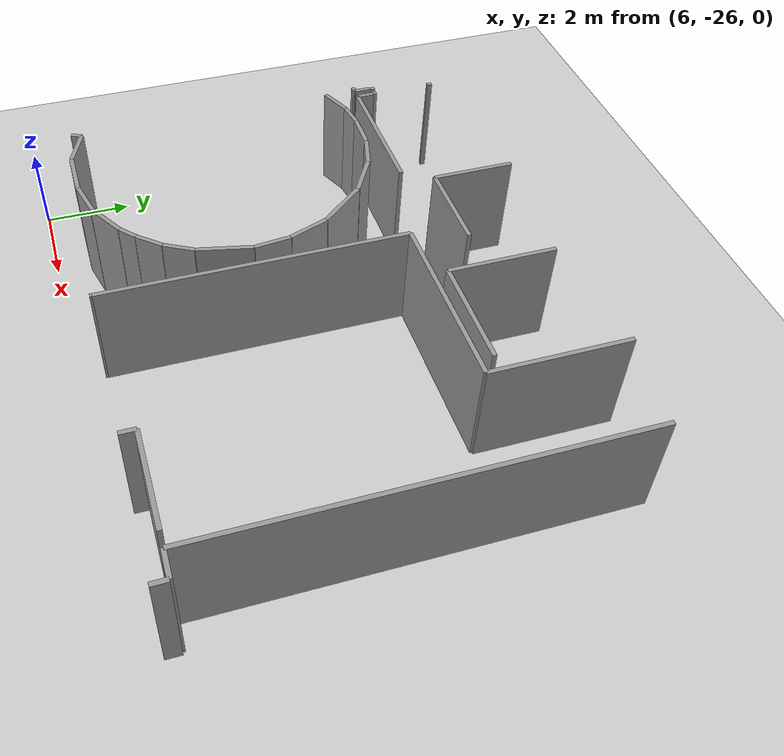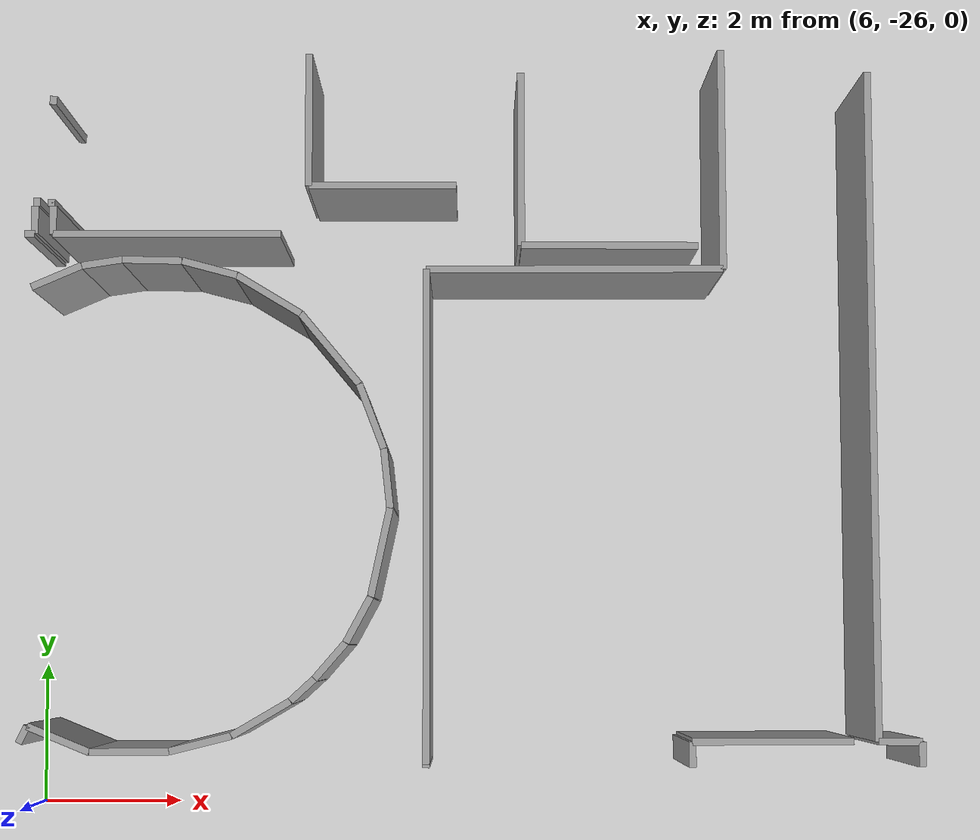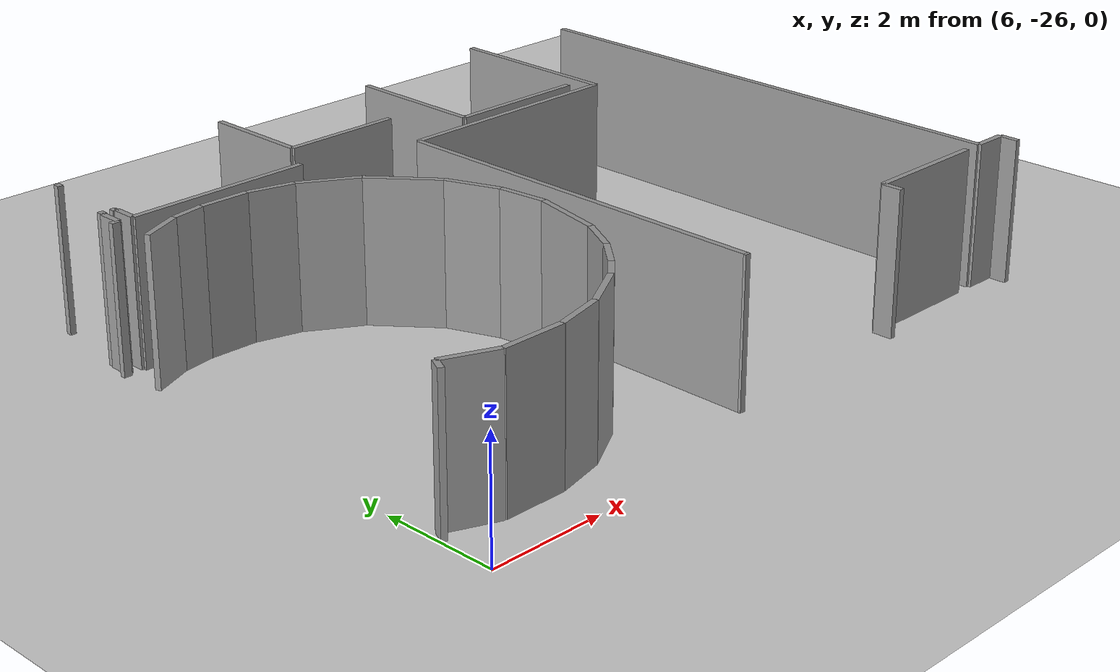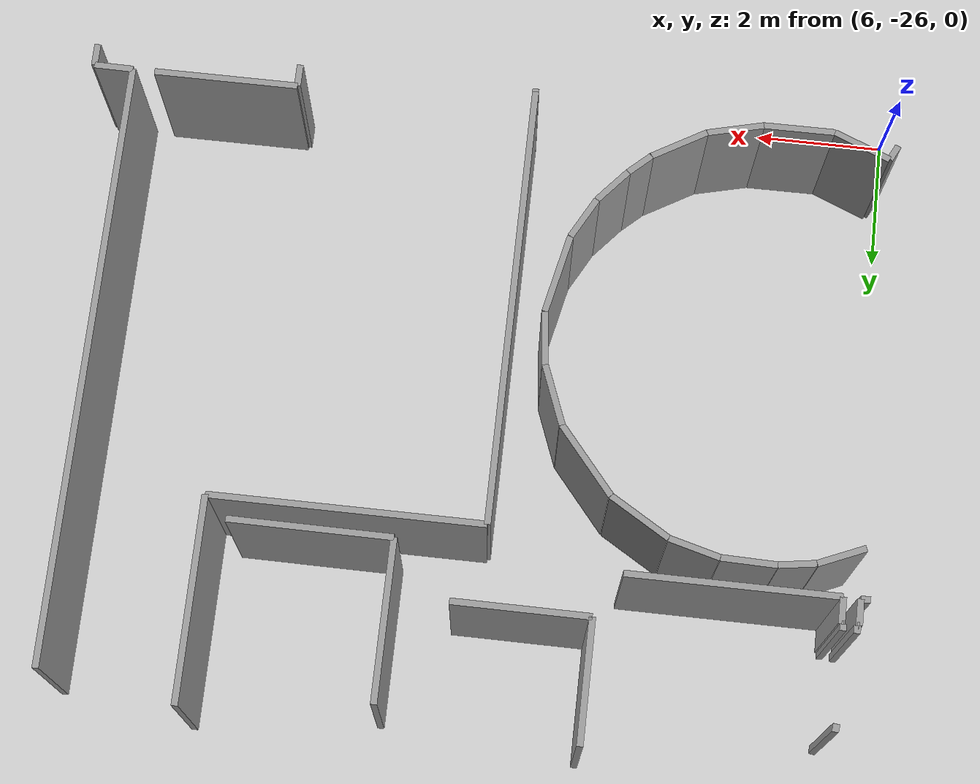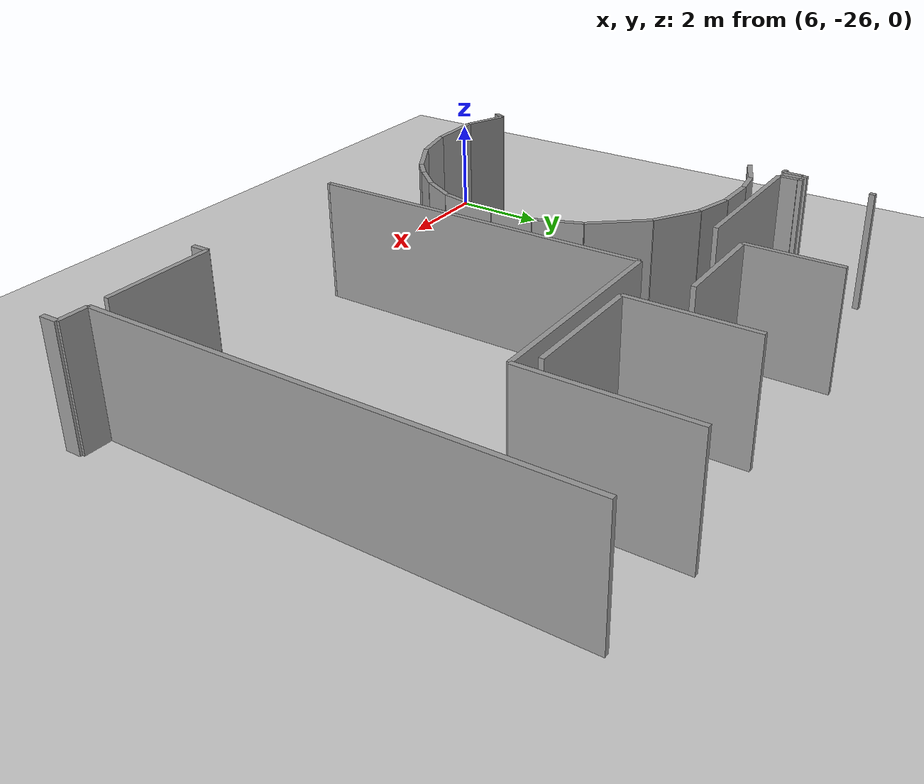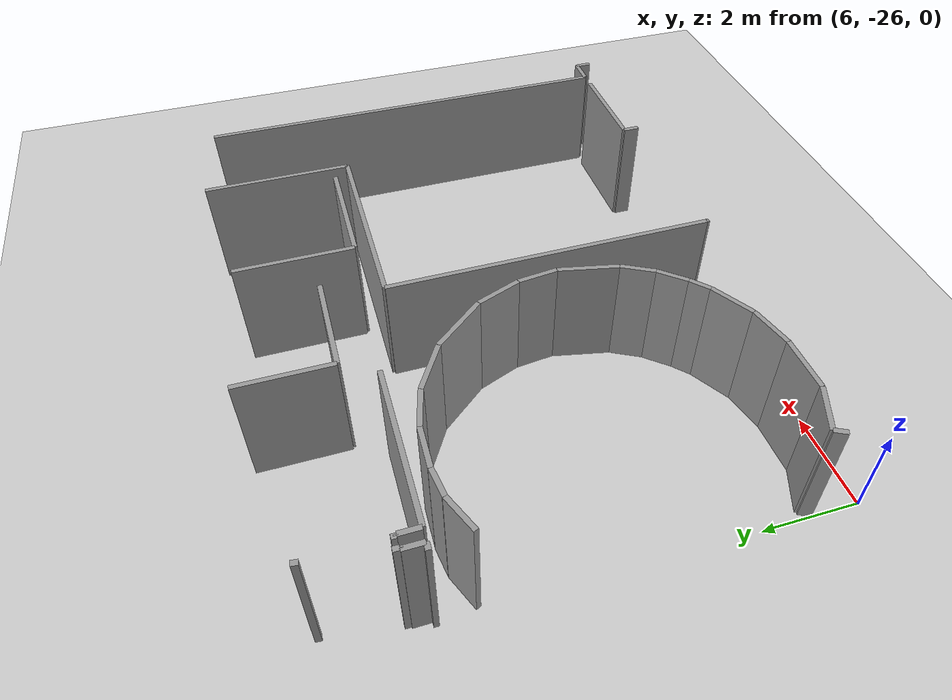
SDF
<sdf version="1.6">
 <world name="default">
  <model name="ground_plane">
   <static>1</static>
   <link name="link">
    <collision name="collision">
     <geometry><plane><normal>0 0 1</normal><size>100 100</size></plane></geometry>
     <surface><friction><ode><mu>100</mu><mu2>50</mu2></ode></friction></surface>
    </collision>
    <visual name="visual">
     <cast_shadows>0</cast_shadows>
     <geometry><plane><normal>0 0 1</normal><size>100 100</size></plane></geometry>
     <material>
      <script><uri>file://media/materials/scripts/gazebo.material</uri><name>Gazebo/Grey</name></script>
     </material>
    </visual>
   </link>
  </model>
  <model name="50045368">
   <static>1</static>
   <link name="Wall_472">
    <collision name="Wall_472_Collision">
     <geometry><box><size>0.116391359593 0.1 2.5</size></box></geometry>
     <pose>0.0581956797967 0 1.25 0 0 0</pose>
    </collision>
    <visual name="Wall_472_Visual">
     <pose>0.0581956797967 0 1.25 0 0 0</pose>
     <geometry><box><size>0.116391359593 0.1 2.5</size></box></geometry>
     <material>
      <script><uri>file://media/materials/scripts/gazebo.material</uri><name>Gazebo/Grey</name></script>
      <ambient>1 1 1 1</ambient>
     </material>
    </visual>
    <pose>58.9964421855 -43.0712833545 0 0 0 -1.57079632679</pose>
   </link>
   <link name="Wall_473">
    <collision name="Wall_473_Collision">
     <geometry><box><size>0.0249047013977 0.1 2.5</size></box></geometry>
     <pose>0.0124523506989 0 1.25 0 0 0</pose>
    </collision>
    <visual name="Wall_473_Visual">
     <pose>0.0124523506989 0 1.25 0 0 0</pose>
     <geometry><box><size>0.0249047013977 0.1 2.5</size></box></geometry>
     <material>
      <script><uri>file://media/materials/scripts/gazebo.material</uri><name>Gazebo/Grey</name></script>
      <ambient>1 1 1 1</ambient>
     </material>
    </visual>
    <pose>58.9964421855 -43.1876747141 0 0 0 3.14159265359</pose>
   </link>
   <link name="Wall_474">
    <collision name="Wall_474_Collision">
     <geometry><box><size>0.394536213469 0.1 2.5</size></box></geometry>
     <pose>0.197268106734 0 1.25 0 0 0</pose>
    </collision>
    <visual name="Wall_474_Visual">
     <pose>0.197268106734 0 1.25 0 0 0</pose>
     <geometry><box><size>0.394536213469 0.1 2.5</size></box></geometry>
     <material>
      <script><uri>file://media/materials/scripts/gazebo.material</uri><name>Gazebo/Grey</name></script>
      <ambient>1 1 1 1</ambient>
     </material>
    </visual>
    <pose>58.9715374841 -43.1876747141 0 0 0 -1.57079632679</pose>
   </link>
   <link name="Wall_475">
    <collision name="Wall_475_Collision">
     <geometry><box><size>0.141296060991 0.1 2.5</size></box></geometry>
     <pose>0.0706480304956 0 1.25 0 0 0</pose>
    </collision>
    <visual name="Wall_475_Visual">
     <pose>0.0706480304956 0 1.25 0 0 0</pose>
     <geometry><box><size>0.141296060991 0.1 2.5</size></box></geometry>
     <material>
      <script><uri>file://media/materials/scripts/gazebo.material</uri><name>Gazebo/Grey</name></script>
      <ambient>1 1 1 1</ambient>
     </material>
    </visual>
    <pose>58.9715374841 -43.5822109276 0 0 0 3.14159265359</pose>
   </link>
   <link name="Wall_478">
    <collision name="Wall_478_Collision">
     <geometry><box><size>0.763913130959 0.1 2.5</size></box></geometry>
     <pose>0.38195656548 0 1.25 0 0 0</pose>
    </collision>
    <visual name="Wall_478_Visual">
     <pose>0.38195656548 0 1.25 0 0 0</pose>
     <geometry><box><size>0.763913130959 0.1 2.5</size></box></geometry>
     <material>
      <script><uri>file://media/materials/scripts/gazebo.material</uri><name>Gazebo/Grey</name></script>
      <ambient>1 1 1 1</ambient>
     </material>
    </visual>
    <pose>58.9351969504 -44.3390088945 0 0 0 0.40484810481</pose>
   </link>
   <link name="Wall_479">
    <collision name="Wall_479_Collision">
     <geometry><box><size>0.574959528741 0.1 2.5</size></box></geometry>
     <pose>0.287479764371 0 1.25 0 0 0</pose>
    </collision>
    <visual name="Wall_479_Visual">
     <pose>0.287479764371 0 1.25 0 0 0</pose>
     <geometry><box><size>0.574959528741 0.1 2.5</size></box></geometry>
     <material>
      <script><uri>file://media/materials/scripts/gazebo.material</uri><name>Gazebo/Grey</name></script>
      <ambient>1 1 1 1</ambient>
     </material>
    </visual>
    <pose>59.6373570521 -44.0381194409 0 0 0 0.150179409364</pose>
   </link>
   <link name="Wall_480">
    <collision name="Wall_480_Collision">
     <geometry><box><size>0.840879662866 0.1 2.5</size></box></geometry>
     <pose>0.420439831433 0 1.25 0 0 0</pose>
    </collision>
    <visual name="Wall_480_Visual">
     <pose>0.420439831433 0 1.25 0 0 0</pose>
     <geometry><box><size>0.840879662866 0.1 2.5</size></box></geometry>
     <material>
      <script><uri>file://media/materials/scripts/gazebo.material</uri><name>Gazebo/Grey</name></script>
      <ambient>1 1 1 1</ambient>
     </material>
    </visual>
    <pose>60.2058449809 -43.9520965693 0 0 0 -0.02281949653</pose>
   </link>
   <link name="Wall_481">
    <collision name="Wall_481_Collision">
     <geometry><box><size>0.799048880495 0.1 2.5</size></box></geometry>
     <pose>0.399524440247 0 1.25 0 0 0</pose>
    </collision>
    <visual name="Wall_481_Visual">
     <pose>0.399524440247 0 1.25 0 0 0</pose>
     <geometry><box><size>0.799048880495 0.1 2.5</size></box></geometry>
     <material>
      <script><uri>file://media/materials/scripts/gazebo.material</uri><name>Gazebo/Grey</name></script>
      <ambient>1 1 1 1</ambient>
     </material>
    </visual>
    <pose>61.0465057179 -43.9712833545 0 0 0 -0.260715068957</pose>
   </link>
   <link name="Wall_482">
    <collision name="Wall_482_Collision">
     <geometry><box><size>1.05150777065 0.1 2.5</size></box></geometry>
     <pose>0.525753885327 0 1.25 0 0 0</pose>
    </collision>
    <visual name="Wall_482_Visual">
     <pose>0.525753885327 0 1.25 0 0 0</pose>
     <geometry><box><size>1.05150777065 0.1 2.5</size></box></geometry>
     <material>
      <script><uri>file://media/materials/scripts/gazebo.material</uri><name>Gazebo/Grey</name></script>
      <ambient>1 1 1 1</ambient>
     </material>
    </visual>
    <pose>61.8185514612 -44.1772554003 0 0 0 -0.543714620254</pose>
   </link>
   <link name="Wall_483">
    <collision name="Wall_483_Collision">
     <geometry><box><size>1.28922830204 0.1 2.5</size></box></geometry>
     <pose>0.644614151021 0 1.25 0 0 0</pose>
    </collision>
    <visual name="Wall_483_Visual">
     <pose>0.644614151021 0 1.25 0 0 0</pose>
     <geometry><box><size>1.28922830204 0.1 2.5</size></box></geometry>
     <material>
      <script><uri>file://media/materials/scripts/gazebo.material</uri><name>Gazebo/Grey</name></script>
      <ambient>1 1 1 1</ambient>
     </material>
    </visual>
    <pose>62.7184243964 -44.7212198221 0 0 0 -0.87983118902</pose>
   </link>
   <link name="Wall_484">
    <collision name="Wall_484_Collision">
     <geometry><box><size>0.966219719991 0.1 2.5</size></box></geometry>
     <pose>0.483109859995 0 1.25 0 0 0</pose>
    </collision>
    <visual name="Wall_484_Visual">
     <pose>0.483109859995 0 1.25 0 0 0</pose>
     <geometry><box><size>0.966219719991 0.1 2.5</size></box></geometry>
     <material>
      <script><uri>file://media/materials/scripts/gazebo.material</uri><name>Gazebo/Grey</name></script>
      <ambient>1 1 1 1</ambient>
     </material>
    </visual>
    <pose>63.540025413 -45.7147395172 0 0 0 -1.20682322228</pose>
   </link>
   <link name="Wall_485">
    <collision name="Wall_485_Collision">
     <geometry><box><size>0.836481408914 0.1 2.5</size></box></geometry>
     <pose>0.418240704457 0 1.25 0 0 0</pose>
    </collision>
    <visual name="Wall_485_Visual">
     <pose>0.418240704457 0 1.25 0 0 0</pose>
     <geometry><box><size>0.836481408914 0.1 2.5</size></box></geometry>
     <material>
      <script><uri>file://media/materials/scripts/gazebo.material</uri><name>Gazebo/Grey</name></script>
      <ambient>1 1 1 1</ambient>
     </material>
    </visual>
    <pose>63.8839898348 -46.6176620076 0 0 0 -1.4645677152</pose>
   </link>
   <link name="Wall_486">
    <collision name="Wall_486_Collision">
     <geometry><box><size>1.25883655094 0.1 2.5</size></box></geometry>
     <pose>0.62941827547 0 1.25 0 0 0</pose>
    </collision>
    <visual name="Wall_486_Visual">
     <pose>0.62941827547 0 1.25 0 0 0</pose>
     <geometry><box><size>1.25883655094 0.1 2.5</size></box></geometry>
     <material>
      <script><uri>file://media/materials/scripts/gazebo.material</uri><name>Gazebo/Grey</name></script>
      <ambient>1 1 1 1</ambient>
     </material>
    </visual>
    <pose>63.9726810673 -47.4494282084 0 0 0 -1.78387066513</pose>
   </link>
   <link name="Wall_487">
    <collision name="Wall_487_Collision">
     <geometry><box><size>0.720918931856 0.1 2.5</size></box></geometry>
     <pose>0.360459465928 0 1.25 0 0 0</pose>
    </collision>
    <visual name="Wall_487_Visual">
     <pose>0.360459465928 0 1.25 0 0 0</pose>
     <geometry><box><size>0.720918931856 0.1 2.5</size></box></geometry>
     <material>
      <script><uri>file://media/materials/scripts/gazebo.material</uri><name>Gazebo/Grey</name></script>
      <ambient>1 1 1 1</ambient>
     </material>
    </visual>
    <pose>63.706480305 -48.6797966963 0 0 0 -2.06676705905</pose>
   </link>
   <link name="Wall_488">
    <collision name="Wall_488_Collision">
     <geometry><box><size>0.657926409232 0.1 2.5</size></box></geometry>
     <pose>0.328963204616 0 1.25 0 0 0</pose>
    </collision>
    <visual name="Wall_488_Visual">
     <pose>0.328963204616 0 1.25 0 0 0</pose>
     <geometry><box><size>0.657926409232 0.1 2.5</size></box></geometry>
     <material>
      <script><uri>file://media/materials/scripts/gazebo.material</uri><name>Gazebo/Grey</name></script>
      <ambient>1 1 1 1</ambient>
     </material>
    </visual>
    <pose>63.3634053367 -49.3138500635 0 0 0 -2.28484810657</pose>
   </link>
   <link name="Wall_489">
    <collision name="Wall_489_Collision">
     <geometry><box><size>0.450043550282 0.1 2.5</size></box></geometry>
     <pose>0.225021775141 0 1.25 0 0 0</pose>
    </collision>
    <visual name="Wall_489_Visual">
     <pose>0.225021775141 0 1.25 0 0 0</pose>
     <geometry><box><size>0.450043550282 0.1 2.5</size></box></geometry>
     <material>
      <script><uri>file://media/materials/scripts/gazebo.material</uri><name>Gazebo/Grey</name></script>
      <ambient>1 1 1 1</ambient>
     </material>
    </visual>
    <pose>62.9325285896 -49.8110546379 0 0 0 -2.40052992669</pose>
   </link>
   <link name="Wall_490">
    <collision name="Wall_490_Collision">
     <geometry><box><size>0.941303273538 0.1 2.5</size></box></geometry>
     <pose>0.470651636769 0 1.25 0 0 0</pose>
    </collision>
    <visual name="Wall_490_Visual">
     <pose>0.470651636769 0 1.25 0 0 0</pose>
     <geometry><box><size>0.941303273538 0.1 2.5</size></box></geometry>
     <material>
      <script><uri>file://media/materials/scripts/gazebo.material</uri><name>Gazebo/Grey</name></script>
      <ambient>1 1 1 1</ambient>
     </material>
    </visual>
    <pose>62.6005082592 -50.114866582 0 0 0 -2.61300322212</pose>
   </link>
   <link name="Wall_491">
    <collision name="Wall_491_Collision">
     <geometry><box><size>0.883890261323 0.1 2.5</size></box></geometry>
     <pose>0.441945130662 0 1.25 0 0 0</pose>
    </collision>
    <visual name="Wall_491_Visual">
     <pose>0.441945130662 0 1.25 0 0 0</pose>
     <geometry><box><size>0.883890261323 0.1 2.5</size></box></geometry>
     <material>
      <script><uri>file://media/materials/scripts/gazebo.material</uri><name>Gazebo/Grey</name></script>
      <ambient>1 1 1 1</ambient>
     </material>
    </visual>
    <pose>61.7876747141 -50.5895806861 0 0 0 -2.90048412908</pose>
   </link>
   <link name="Wall_492">
    <collision name="Wall_492_Collision">
     <geometry><box><size>1.09797814615 0.1 2.5</size></box></geometry>
     <pose>0.548989073075 0 1.25 0 0 0</pose>
    </collision>
    <visual name="Wall_492_Visual">
     <pose>0.548989073075 0 1.25 0 0 0</pose>
     <geometry><box><size>1.09797814615 0.1 2.5</size></box></geometry>
     <material>
      <script><uri>file://media/materials/scripts/gazebo.material</uri><name>Gazebo/Grey</name></script>
      <ambient>1 1 1 1</ambient>
     </material>
    </visual>
    <pose>60.9293519695 -50.800635324 0 0 0 -3.13707931773</pose>
   </link>
   <link name="Wall_493">
    <collision name="Wall_493_Collision">
     <geometry><box><size>0.92948205676 0.1 2.5</size></box></geometry>
     <pose>0.46474102838 0 1.25 0 0 0</pose>
    </collision>
    <visual name="Wall_493_Visual">
     <pose>0.46474102838 0 1.25 0 0 0</pose>
     <geometry><box><size>0.92948205676 0.1 2.5</size></box></geometry>
     <material>
      <script><uri>file://media/materials/scripts/gazebo.material</uri><name>Gazebo/Grey</name></script>
      <ambient>1 1 1 1</ambient>
     </material>
    </visual>
    <pose>59.8313850064 -50.8055908513 0 0 0 2.7520489251</pose>
   </link>
   <link name="Wall_494">
    <collision name="Wall_494_Collision">
     <geometry><box><size>0.260031716451 0.1 2.5</size></box></geometry>
     <pose>0.130015858225 0 1.25 0 0 0</pose>
    </collision>
    <visual name="Wall_494_Visual">
     <pose>0.130015858225 0 1.25 0 0 0</pose>
     <geometry><box><size>0.260031716451 0.1 2.5</size></box></geometry>
     <material>
      <script><uri>file://media/materials/scripts/gazebo.material</uri><name>Gazebo/Grey</name></script>
      <ambient>1 1 1 1</ambient>
     </material>
    </visual>
    <pose>58.9715374841 -50.4526048285 0 0 0 -2.0348809987</pose>
   </link>
   <link name="Wall_502">
    <collision name="Wall_502_Collision">
     <geometry><box><size>3.20279542567 0.1 2.5</size></box></geometry>
     <pose>1.60139771283 0 1.25 0 0 0</pose>
    </collision>
    <visual name="Wall_502_Visual">
     <pose>1.60139771283 0 1.25 0 0 0</pose>
     <geometry><box><size>3.20279542567 0.1 2.5</size></box></geometry>
     <material>
      <script><uri>file://media/materials/scripts/gazebo.material</uri><name>Gazebo/Grey</name></script>
      <ambient>1 1 1 1</ambient>
     </material>
    </visual>
    <pose>62.4296060991 -43.5874205845 0 0 0 3.14159265359</pose>
   </link>
   <link name="Wall_503">
    <collision name="Wall_503_Collision">
     <geometry><box><size>0.400762388818 0.1 2.5</size></box></geometry>
     <pose>0.200381194409 0 1.25 0 0 0</pose>
    </collision>
    <visual name="Wall_503_Visual">
     <pose>0.200381194409 0 1.25 0 0 0</pose>
     <geometry><box><size>0.400762388818 0.1 2.5</size></box></geometry>
     <material>
      <script><uri>file://media/materials/scripts/gazebo.material</uri><name>Gazebo/Grey</name></script>
      <ambient>1 1 1 1</ambient>
     </material>
    </visual>
    <pose>59.2268106734 -43.5874205845 0 0 0 1.57079632679</pose>
   </link>
   <link name="Wall_504">
    <collision name="Wall_504_Collision">
     <geometry><box><size>0.0250317662008 0.1 2.5</size></box></geometry>
     <pose>0.0125158831004 0 1.25 0 0 0</pose>
    </collision>
    <visual name="Wall_504_Visual">
     <pose>0.0125158831004 0 1.25 0 0 0</pose>
     <geometry><box><size>0.0250317662008 0.1 2.5</size></box></geometry>
     <material>
      <script><uri>file://media/materials/scripts/gazebo.material</uri><name>Gazebo/Grey</name></script>
      <ambient>1 1 1 1</ambient>
     </material>
    </visual>
    <pose>59.2268106734 -43.1866581957 0 0 0 3.14159265359</pose>
   </link>
   <link name="Wall_505">
    <collision name="Wall_505_Collision">
     <geometry><box><size>0.0942820838628 0.1 2.5</size></box></geometry>
     <pose>0.0471410419314 0 1.25 0 0 0</pose>
    </collision>
    <visual name="Wall_505_Visual">
     <pose>0.0471410419314 0 1.25 0 0 0</pose>
     <geometry><box><size>0.0942820838628 0.1 2.5</size></box></geometry>
     <material>
      <script><uri>file://media/materials/scripts/gazebo.material</uri><name>Gazebo/Grey</name></script>
      <ambient>1 1 1 1</ambient>
     </material>
    </visual>
    <pose>59.2017789072 -43.1866581957 0 0 0 1.57079632679</pose>
   </link>
   <link name="Wall_506">
    <collision name="Wall_506_Collision">
     <geometry><box><size>0.120606990082 0.1 2.5</size></box></geometry>
     <pose>0.0603034950408 0 1.25 0 0 0</pose>
    </collision>
    <visual name="Wall_506_Visual">
     <pose>0.0603034950408 0 1.25 0 0 0</pose>
     <geometry><box><size>0.120606990082 0.1 2.5</size></box></geometry>
     <material>
      <script><uri>file://media/materials/scripts/gazebo.material</uri><name>Gazebo/Grey</name></script>
      <ambient>1 1 1 1</ambient>
     </material>
    </visual>
    <pose>59.2017789072 -41.7362134689 0 0 0 1.46630540327</pose>
   </link>
   <link name="Wall_507">
    <collision name="Wall_507_Collision">
     <geometry><box><size>2.46391359593 0.1 2.5</size></box></geometry>
     <pose>1.23195679797 0 1.25 0 0 0</pose>
    </collision>
    <visual name="Wall_507_Visual">
     <pose>1.23195679797 0 1.25 0 0 0</pose>
     <geometry><box><size>2.46391359593 0.1 2.5</size></box></geometry>
     <material>
      <script><uri>file://media/materials/scripts/gazebo.material</uri><name>Gazebo/Grey</name></script>
      <ambient>1 1 1 1</ambient>
     </material>
    </visual>
    <pose>65.8121982211 -43.7573062262 0 0 0 1.57079632679</pose>
   </link>
   <link name="Wall_515">
    <collision name="Wall_515_Collision">
     <geometry><box><size>2.4855409204 0.1 2.5</size></box></geometry>
     <pose>1.2427704602 0 1.25 0 0 0</pose>
    </collision>
    <visual name="Wall_515_Visual">
     <pose>1.2427704602 0 1.25 0 0 0</pose>
     <geometry><box><size>2.4855409204 0.1 2.5</size></box></geometry>
     <material>
      <script><uri>file://media/materials/scripts/gazebo.material</uri><name>Gazebo/Grey</name></script>
      <ambient>1 1 1 1</ambient>
     </material>
    </visual>
    <pose>68.2977128335 -43.7687420584 0 0 0 3.13699169429</pose>
   </link>
   <link name="Wall_516">
    <collision name="Wall_516_Collision">
     <geometry><box><size>6.88144853875 0.1 2.5</size></box></geometry>
     <pose>3.44072426938 0 1.25 0 0 0</pose>
    </collision>
    <visual name="Wall_516_Visual">
     <pose>3.44072426938 0 1.25 0 0 0</pose>
     <geometry><box><size>6.88144853875 0.1 2.5</size></box></geometry>
     <material>
      <script><uri>file://media/materials/scripts/gazebo.material</uri><name>Gazebo/Grey</name></script>
      <ambient>1 1 1 1</ambient>
     </material>
    </visual>
    <pose>64.4763659466 -50.9787801779 0 0 0 1.57079632679</pose>
   </link>
   <link name="Wall_517">
    <collision name="Wall_517_Collision">
     <geometry><box><size>4.16925031766 0.1 2.5</size></box></geometry>
     <pose>2.08462515883 0 1.25 0 0 0</pose>
    </collision>
    <visual name="Wall_517_Visual">
     <pose>2.08462515883 0 1.25 0 0 0</pose>
     <geometry><box><size>4.16925031766 0.1 2.5</size></box></geometry>
     <material>
      <script><uri>file://media/materials/scripts/gazebo.material</uri><name>Gazebo/Grey</name></script>
      <ambient>1 1 1 1</ambient>
     </material>
    </visual>
    <pose>64.4763659466 -44.0973316391 0 0 0 0.0</pose>
   </link>
   <link name="Wall_518">
    <collision name="Wall_518_Collision">
     <geometry><box><size>3.13100381194 0.1 2.5</size></box></geometry>
     <pose>1.56550190597 0 1.25 0 0 0</pose>
    </collision>
    <visual name="Wall_518_Visual">
     <pose>1.56550190597 0 1.25 0 0 0</pose>
     <geometry><box><size>3.13100381194 0.1 2.5</size></box></geometry>
     <material>
      <script><uri>file://media/materials/scripts/gazebo.material</uri><name>Gazebo/Grey</name></script>
      <ambient>1 1 1 1</ambient>
     </material>
    </visual>
    <pose>68.6456162643 -44.0973316391 0 0 0 1.57079632679</pose>
   </link>
   <link name="Wall_522">
    <collision name="Wall_522_Collision">
     <geometry><box><size>2.22884371029 0.1 2.5</size></box></geometry>
     <pose>1.11442185515 0 1.25 0 0 0</pose>
    </collision>
    <visual name="Wall_522_Visual">
     <pose>1.11442185515 0 1.25 0 0 0</pose>
     <geometry><box><size>2.22884371029 0.1 2.5</size></box></geometry>
     <material>
      <script><uri>file://media/materials/scripts/gazebo.material</uri><name>Gazebo/Grey</name></script>
      <ambient>1 1 1 1</ambient>
     </material>
    </visual>
    <pose>70.3736975858 -50.6778907243 0 0 0 3.14159265359</pose>
   </link>
   <link name="Wall_523">
    <collision name="Wall_523_Collision">
     <geometry><box><size>0.351334180432 0.1 2.5</size></box></geometry>
     <pose>0.175667090216 0 1.25 0 0 0</pose>
    </collision>
    <visual name="Wall_523_Visual">
     <pose>0.175667090216 0 1.25 0 0 0</pose>
     <geometry><box><size>0.351334180432 0.1 2.5</size></box></geometry>
     <material>
      <script><uri>file://media/materials/scripts/gazebo.material</uri><name>Gazebo/Grey</name></script>
      <ambient>1 1 1 1</ambient>
     </material>
    </visual>
    <pose>68.1448538755 -50.6778907243 0 0 0 -1.57079632679</pose>
   </link>
   <link name="Wall_524">
    <collision name="Wall_524_Collision">
     <geometry><box><size>0.0504807209977 0.1 2.5</size></box></geometry>
     <pose>0.0252403604988 0 1.25 0 0 0</pose>
    </collision>
    <visual name="Wall_524_Visual">
     <pose>0.0252403604988 0 1.25 0 0 0</pose>
     <geometry><box><size>0.0504807209977 0.1 2.5</size></box></geometry>
     <material>
      <script><uri>file://media/materials/scripts/gazebo.material</uri><name>Gazebo/Grey</name></script>
      <ambient>1 1 1 1</ambient>
     </material>
    </visual>
    <pose>64.4744599746 -51.0292249047 0 0 0 1.53303091574</pose>
   </link>
   <link name="Wall_525">
    <collision name="Wall_525_Collision">
     <geometry><box><size>9.39263024142 0.1 2.5</size></box></geometry>
     <pose>4.69631512071 0 1.25 0 0 0</pose>
    </collision>
    <visual name="Wall_525_Visual">
     <pose>4.69631512071 0 1.25 0 0 0</pose>
     <geometry><box><size>9.39263024142 0.1 2.5</size></box></geometry>
     <material>
      <script><uri>file://media/materials/scripts/gazebo.material</uri><name>Gazebo/Grey</name></script>
      <ambient>1 1 1 1</ambient>
     </material>
    </visual>
    <pose>70.7139771283 -50.6805590851 0 0 0 1.57079632679</pose>
   </link>
   <link name="Wall_537">
    <collision name="Wall_537_Collision">
     <geometry><box><size>0.344345616264 0.1 2.5</size></box></geometry>
     <pose>0.172172808132 0 1.25 0 0 0</pose>
    </collision>
    <visual name="Wall_537_Visual">
     <pose>0.172172808132 0 1.25 0 0 0</pose>
     <geometry><box><size>0.344345616264 0.1 2.5</size></box></geometry>
     <material>
      <script><uri>file://media/materials/scripts/gazebo.material</uri><name>Gazebo/Grey</name></script>
      <ambient>1 1 1 1</ambient>
     </material>
    </visual>
    <pose>71.3160101652 -51.0313850064 0 0 0 1.57079632679</pose>
   </link>
   <link name="Wall_538">
    <collision name="Wall_538_Collision">
     <geometry><box><size>0.602067912955 0.1 2.5</size></box></geometry>
     <pose>0.301033956477 0 1.25 0 0 0</pose>
    </collision>
    <visual name="Wall_538_Visual">
     <pose>0.301033956477 0 1.25 0 0 0</pose>
     <geometry><box><size>0.602067912955 0.1 2.5</size></box></geometry>
     <material>
      <script><uri>file://media/materials/scripts/gazebo.material</uri><name>Gazebo/Grey</name></script>
      <ambient>1 1 1 1</ambient>
     </material>
    </visual>
    <pose>71.3160101652 -50.6870393901 0 0 0 3.13082903383</pose>
   </link>
   <link name="Wall_576">
    <collision name="Wall_576_Collision">
     <geometry><box><size>1.88627700127 0.1 2.5</size></box></geometry>
     <pose>0.943138500635 0 1.25 0 0 0</pose>
    </collision>
    <visual name="Wall_576_Visual">
     <pose>0.943138500635 0 1.25 0 0 0</pose>
     <geometry><box><size>1.88627700127 0.1 2.5</size></box></geometry>
     <material>
      <script><uri>file://media/materials/scripts/gazebo.material</uri><name>Gazebo/Grey</name></script>
      <ambient>1 1 1 1</ambient>
     </material>
    </visual>
    <pose>62.8179161372 -42.9010165184 0 0 0 1.57079632679</pose>
   </link>
   <link name="Wall_582">
    <collision name="Wall_582_Collision">
     <geometry><box><size>2.08513763417 0.1 2.5</size></box></geometry>
     <pose>1.04256881709 0 1.25 0 0 0</pose>
    </collision>
    <visual name="Wall_582_Visual">
     <pose>1.04256881709 0 1.25 0 0 0</pose>
     <geometry><box><size>2.08513763417 0.1 2.5</size></box></geometry>
     <material>
      <script><uri>file://media/materials/scripts/gazebo.material</uri><name>Gazebo/Grey</name></script>
      <ambient>1 1 1 1</ambient>
     </material>
    </visual>
    <pose>64.9030495553 -42.9052096569 0 0 0 3.13958168738</pose>
   </link>
   <pose>-52.8 25.6383100381 0 0 0 0</pose>
  </model>
 </world>
</sdf>
